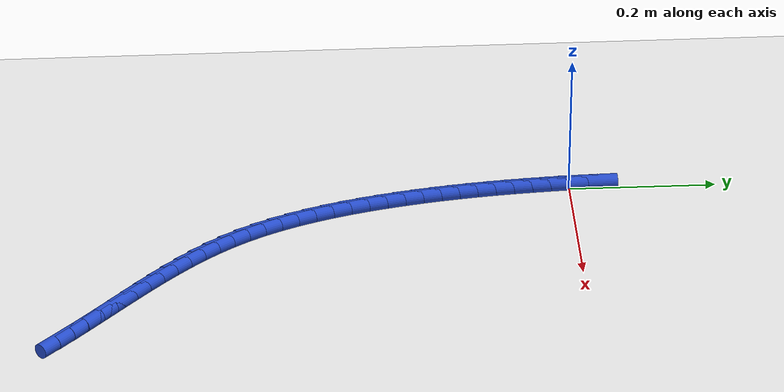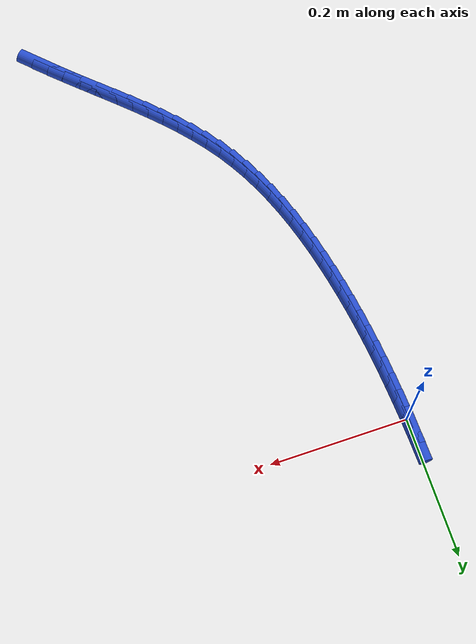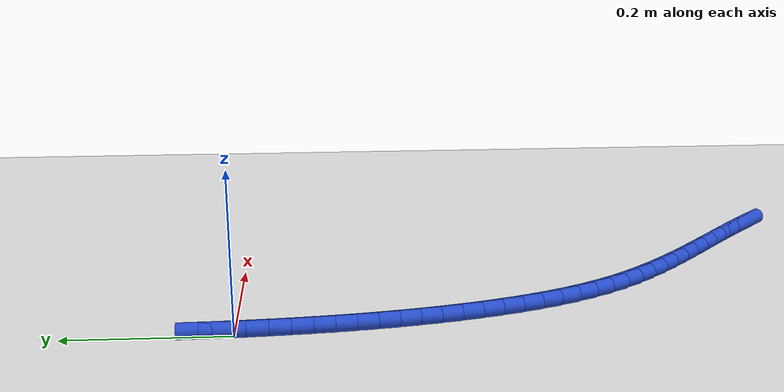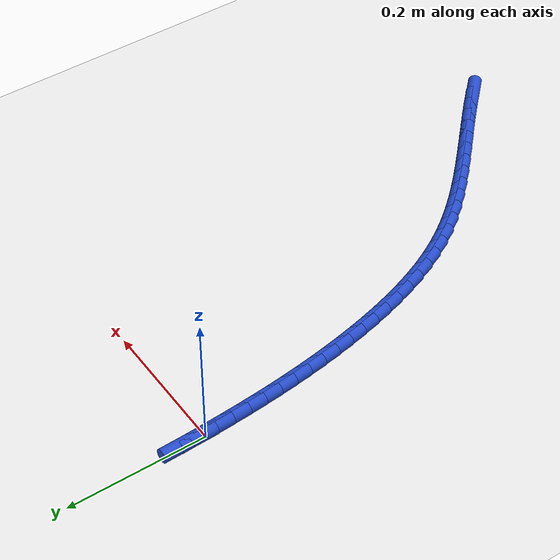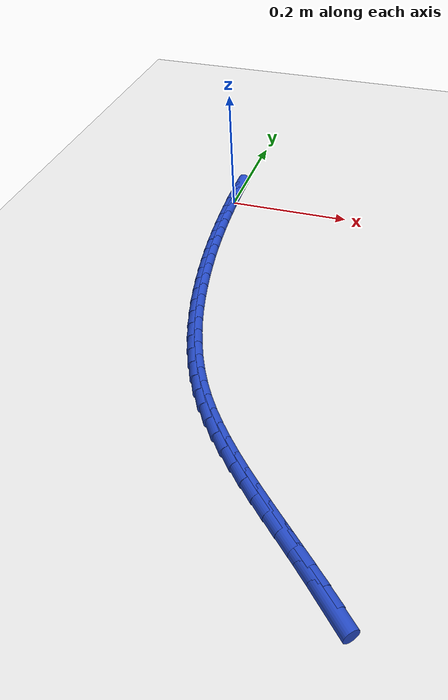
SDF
<sdf version="1.6">
 <world name="default">
  <model name="ground_plane">
   <static>1</static>
   <link name="link">
    <collision name="collision">
     <geometry><plane><normal>0 0 1</normal><size>100 100</size></plane></geometry>
     <surface><friction><ode><mu>100</mu><mu2>50</mu2></ode></friction></surface>
    </collision>
    <visual name="visual">
     <cast_shadows>0</cast_shadows>
     <geometry><plane><normal>0 0 1</normal><size>100 100</size></plane></geometry>
     <material>
      <script><uri>file://media/materials/scripts/gazebo.material</uri><name>Gazebo/WhiteGlow</name></script>
     </material>
    </visual>
   </link>
  </model>
  <model name="line">
   <link name="link_0">
    <pose>-9.75781955236954e-18 -6.938893903907228e-18 0.01 0 1.57 -1.5243373193202743</pose>
    <collision name="collision">
     <geometry><cylinder><radius>0.01</radius><length>0.08</length></cylinder></geometry>
    </collision>
    <visual name="visual">
     <material>
      <script><name>Gazebo/Blue</name><uri>file://media/materials/scripts/gazebo.material</uri></script>
     </material>
     <geometry><cylinder><radius>0.01</radius><length>0.08</length></cylinder></geometry>
    </visual>
   </link>
   <link name="link_1">
    <pose>-0.0012050888104080423 0.02592008986052021 0.01 0 1.57 -1.5419578158329121</pose>
    <collision name="collision">
     <geometry><cylinder><radius>0.01</radius><length>0.08</length></cylinder></geometry>
    </collision>
    <visual name="visual">
     <material>
      <script><name>Gazebo/Blue</name><uri>file://media/materials/scripts/gazebo.material</uri></script>
     </material>
     <geometry><cylinder><radius>0.01</radius><length>0.08</length></cylinder></geometry>
    </visual>
   </link>
   <link name="link_239">
    <pose>0.323386543951033 -0.6786966450368068 0.01 0 1.57 -0.7788642665599463</pose>
    <collision name="collision">
     <geometry><cylinder><radius>0.01</radius><length>0.08</length></cylinder></geometry>
    </collision>
    <visual name="visual">
     <material>
      <script><name>Gazebo/Blue</name><uri>file://media/materials/scripts/gazebo.material</uri></script>
     </material>
     <geometry><cylinder><radius>0.01</radius><length>0.08</length></cylinder></geometry>
    </visual>
   </link>
   <link name="link_240">
    <pose>0.3051212333121771 -0.6606684756271342 0.01 0 1.57 -0.762567975063587</pose>
    <collision name="collision">
     <geometry><cylinder><radius>0.01</radius><length>0.08</length></cylinder></geometry>
    </collision>
    <visual name="visual">
     <material>
      <script><name>Gazebo/Blue</name><uri>file://media/materials/scripts/gazebo.material</uri></script>
     </material>
     <geometry><cylinder><radius>0.01</radius><length>0.08</length></cylinder></geometry>
    </visual>
   </link>
   <link name="link_241">
    <pose>0.28659036636091817 -0.6429649895335015 0.01 0 1.57 -0.7525396142778975</pose>
    <collision name="collision">
     <geometry><cylinder><radius>0.01</radius><length>0.08</length></cylinder></geometry>
    </collision>
    <visual name="visual">
     <material>
      <script><name>Gazebo/Blue</name><uri>file://media/materials/scripts/gazebo.material</uri></script>
     </material>
     <geometry><cylinder><radius>0.01</radius><length>0.08</length></cylinder></geometry>
    </visual>
   </link>
   <link name="link_242">
    <pose>0.26791876717408736 -0.6254818116038203 0.01 0 1.57 -0.748796253603602</pose>
    <collision name="collision">
     <geometry><cylinder><radius>0.01</radius><length>0.08</length></cylinder></geometry>
    </collision>
    <visual name="visual">
     <material>
      <script><name>Gazebo/Blue</name><uri>file://media/materials/scripts/gazebo.material</uri></script>
     </material>
     <geometry><cylinder><radius>0.01</radius><length>0.08</length></cylinder></geometry>
    </visual>
   </link>
   <link name="link_243">
    <pose>0.24923125982851765 -0.6081145666860028 0.01 0 1.57 -0.7513795982838737</pose>
    <collision name="collision">
     <geometry><cylinder><radius>0.01</radius><length>0.08</length></cylinder></geometry>
    </collision>
    <visual name="visual">
     <material>
      <script><name>Gazebo/Blue</name><uri>file://media/materials/scripts/gazebo.material</uri></script>
     </material>
     <geometry><cylinder><radius>0.01</radius><length>0.08</length></cylinder></geometry>
    </visual>
   </link>
   <link name="link_244">
    <pose>0.2306526684010399 -0.5907588796279603 0.01 0 1.57 -0.7603611205721587</pose>
    <collision name="collision">
     <geometry><cylinder><radius>0.01</radius><length>0.08</length></cylinder></geometry>
    </collision>
    <visual name="visual">
     <material>
      <script><name>Gazebo/Blue</name><uri>file://media/materials/scripts/gazebo.material</uri></script>
     </material>
     <geometry><cylinder><radius>0.01</radius><length>0.08</length></cylinder></geometry>
    </visual>
   </link>
   <link name="link_245">
    <pose>0.2123078169684872 -0.5733103752776051 0.01 0 1.57 -0.7758398914722034</pose>
    <collision name="collision">
     <geometry><cylinder><radius>0.01</radius><length>0.08</length></cylinder></geometry>
    </collision>
    <visual name="visual">
     <material>
      <script><name>Gazebo/Blue</name><uri>file://media/materials/scripts/gazebo.material</uri></script>
     </material>
     <geometry><cylinder><radius>0.01</radius><length>0.08</length></cylinder></geometry>
    </visual>
   </link>
   <link name="link_246">
    <pose>0.1943215296076909 -0.5556646784828486 0.01 0 1.57 -0.7979324329898025</pose>
    <collision name="collision">
     <geometry><cylinder><radius>0.01</radius><length>0.08</length></cylinder></geometry>
    </collision>
    <visual name="visual">
     <material>
      <script><name>Gazebo/Blue</name><uri>file://media/materials/scripts/gazebo.material</uri></script>
     </material>
     <geometry><cylinder><radius>0.01</radius><length>0.08</length></cylinder></geometry>
    </visual>
   </link>
   <link name="link_247">
    <pose>0.1768186303954826 -0.5377174140916023 0.01 0 1.57 -0.826753501340625</pose>
    <collision name="collision">
     <geometry><cylinder><radius>0.01</radius><length>0.08</length></cylinder></geometry>
    </collision>
    <visual name="visual">
     <material>
      <script><name>Gazebo/Blue</name><uri>file://media/materials/scripts/gazebo.material</uri></script>
     </material>
     <geometry><cylinder><radius>0.01</radius><length>0.08</length></cylinder></geometry>
    </visual>
   </link>
   <link name="link_248">
    <pose>0.1599239434086952 -0.5193642069517788 0.01 0 1.57 -0.8623866148991036</pose>
    <collision name="collision">
     <geometry><cylinder><radius>0.01</radius><length>0.08</length></cylinder></geometry>
    </collision>
    <visual name="visual">
     <material>
      <script><name>Gazebo/Blue</name><uri>file://media/materials/scripts/gazebo.material</uri></script>
     </material>
     <geometry><cylinder><radius>0.01</radius><length>0.08</length></cylinder></geometry>
    </visual>
   </link>
   <link name="link_249">
    <pose>0.14376229272415975 -0.5005006819112888 0.01 0 1.57 -0.9048437201147613</pose>
    <collision name="collision">
     <geometry><cylinder><radius>0.01</radius><length>0.08</length></cylinder></geometry>
    </collision>
    <visual name="visual">
     <material>
      <script><name>Gazebo/Blue</name><uri>file://media/materials/scripts/gazebo.material</uri></script>
     </material>
     <geometry><cylinder><radius>0.01</radius><length>0.08</length></cylinder></geometry>
    </visual>
   </link>
   <link name="link_250">
    <pose>0.12845850241870913 -0.4810224638180452 0.01 0 1.57 -0.9540150769033636</pose>
    <collision name="collision">
     <geometry><cylinder><radius>0.01</radius><length>0.08</length></cylinder></geometry>
    </collision>
    <visual name="visual">
     <material>
      <script><name>Gazebo/Blue</name><uri>file://media/materials/scripts/gazebo.material</uri></script>
     </material>
     <geometry><cylinder><radius>0.01</radius><length>0.08</length></cylinder></geometry>
    </visual>
   </link>
   <link name="link_251">
    <pose>0.11413739656917438 -0.4608251775199585 0.01 0 1.57 -1.009475626277944</pose>
    <collision name="collision">
     <geometry><cylinder><radius>0.01</radius><length>0.08</length></cylinder></geometry>
    </collision>
    <visual name="visual">
     <material>
      <script><name>Gazebo/Blue</name><uri>file://media/materials/scripts/gazebo.material</uri></script>
     </material>
     <geometry><cylinder><radius>0.01</radius><length>0.08</length></cylinder></geometry>
    </visual>
   </link>
   <link name="link_252">
    <pose>0.10092140236906692 -0.4398070703097017 0.01 0 1.57 -1.066126749026534</pose>
    <collision name="collision">
     <geometry><cylinder><radius>0.01</radius><length>0.08</length></cylinder></geometry>
    </collision>
    <visual name="visual">
     <material>
      <script><name>Gazebo/Blue</name><uri>file://media/materials/scripts/gazebo.material</uri></script>
     </material>
     <geometry><cylinder><radius>0.01</radius><length>0.08</length></cylinder></geometry>
    </visual>
   </link>
   <link name="link_253">
    <pose>0.08885119181574944 -0.417955838342062 0.01 0 1.57 -1.1181822397743508</pose>
    <collision name="collision">
     <geometry><cylinder><radius>0.01</radius><length>0.08</length></cylinder></geometry>
    </collision>
    <visual name="visual">
     <material>
      <script><name>Gazebo/Blue</name><uri>file://media/materials/scripts/gazebo.material</uri></script>
     </material>
     <geometry><cylinder><radius>0.01</radius><length>0.08</length></cylinder></geometry>
    </visual>
   </link>
   <link name="link_254">
    <pose>0.07786740715851719 -0.395368620933417 0.01 0 1.57 -1.1654808330782205</pose>
    <collision name="collision">
     <geometry><cylinder><radius>0.01</radius><length>0.08</length></cylinder></geometry>
    </collision>
    <visual name="visual">
     <material>
      <script><name>Gazebo/Blue</name><uri>file://media/materials/scripts/gazebo.material</uri></script>
     </material>
     <geometry><cylinder><radius>0.01</radius><length>0.08</length></cylinder></geometry>
    </visual>
   </link>
   <link name="link_255">
    <pose>0.06790459216035843 -0.37214922979145637 0.01 0 1.57 -1.2082692762979066</pose>
    <collision name="collision">
     <geometry><cylinder><radius>0.01</radius><length>0.08</length></cylinder></geometry>
    </collision>
    <visual name="visual">
     <material>
      <script><name>Gazebo/Blue</name><uri>file://media/materials/scripts/gazebo.material</uri></script>
     </material>
     <geometry><cylinder><radius>0.01</radius><length>0.08</length></cylinder></geometry>
    </visual>
   </link>
   <link name="link_256">
    <pose>0.058897290584262754 -0.3484014766238722 0.01 0 1.57 -1.2468205442452938</pose>
    <collision name="collision">
     <geometry><cylinder><radius>0.01</radius><length>0.08</length></cylinder></geometry>
    </collision>
    <visual name="visual">
     <material>
      <script><name>Gazebo/Blue</name><uri>file://media/materials/scripts/gazebo.material</uri></script>
     </material>
     <geometry><cylinder><radius>0.01</radius><length>0.08</length></cylinder></geometry>
    </visual>
   </link>
   <link name="link_257">
    <pose>0.05078004619321879 -0.3242291731383546 0.01 0 1.57 -1.2814110231981624</pose>
    <collision name="collision">
     <geometry><cylinder><radius>0.01</radius><length>0.08</length></cylinder></geometry>
    </collision>
    <visual name="visual">
     <material>
      <script><name>Gazebo/Blue</name><uri>file://media/materials/scripts/gazebo.material</uri></script>
     </material>
     <geometry><cylinder><radius>0.01</radius><length>0.08</length></cylinder></geometry>
    </visual>
   </link>
   <link name="link_258">
    <pose>0.04348740275021528 -0.2997361310425936 0.01 0 1.57 -1.3123043900117295</pose>
    <collision name="collision">
     <geometry><cylinder><radius>0.01</radius><length>0.08</length></cylinder></geometry>
    </collision>
    <visual name="visual">
     <material>
      <script><name>Gazebo/Blue</name><uri>file://media/materials/scripts/gazebo.material</uri></script>
     </material>
     <geometry><cylinder><radius>0.01</radius><length>0.08</length></cylinder></geometry>
    </visual>
   </link>
   <link name="link_259">
    <pose>0.03695390401824163 -0.2750261620442815 0.01 0 1.57 -1.3397406036407933</pose>
    <collision name="collision">
     <geometry><cylinder><radius>0.01</radius><length>0.08</length></cylinder></geometry>
    </collision>
    <visual name="visual">
     <material>
      <script><name>Gazebo/Blue</name><uri>file://media/materials/scripts/gazebo.material</uri></script>
     </material>
     <geometry><cylinder><radius>0.01</radius><length>0.08</length></cylinder></geometry>
    </visual>
   </link>
   <link name="link_260">
    <pose>0.0311140937602864 -0.25020307785110757 0.01 0 1.57 -1.363931924525272</pose>
    <collision name="collision">
     <geometry><cylinder><radius>0.01</radius><length>0.08</length></cylinder></geometry>
    </collision>
    <visual name="visual">
     <material>
      <script><name>Gazebo/Blue</name><uri>file://media/materials/scripts/gazebo.material</uri></script>
     </material>
     <geometry><cylinder><radius>0.01</radius><length>0.08</length></cylinder></geometry>
    </visual>
   </link>
   <link name="link_261">
    <pose>0.02590255842661364 -0.2253704654700083 0.01 0 1.57 -1.385659908649324</pose>
    <collision name="collision">
     <geometry><cylinder><radius>0.01</radius><length>0.08</length></cylinder></geometry>
    </collision>
    <visual name="visual">
     <material>
      <script><name>Gazebo/Blue</name><uri>file://media/materials/scripts/gazebo.material</uri></script>
     </material>
     <geometry><cylinder><radius>0.01</radius><length>0.08</length></cylinder></geometry>
    </visual>
   </link>
   <link name="link_262">
    <pose>0.021261746144252986 -0.20059052897304178 0.01 0 1.57 -1.4062411083282915</pose>
    <collision name="collision">
     <geometry><cylinder><radius>0.01</radius><length>0.08</length></cylinder></geometry>
    </collision>
    <visual name="visual">
     <material>
      <script><name>Gazebo/Blue</name><uri>file://media/materials/scripts/gazebo.material</uri></script>
     </material>
     <geometry><cylinder><radius>0.01</radius><length>0.08</length></cylinder></geometry>
    </visual>
   </link>
   <link name="link_263">
    <pose>0.017151095119478935 -0.1758360386684805 0.01 0 1.57 -1.4257132426261092</pose>
    <collision name="collision">
     <geometry><cylinder><radius>0.01</radius><length>0.08</length></cylinder></geometry>
    </collision>
    <visual name="visual">
     <material>
      <script><name>Gazebo/Blue</name><uri>file://media/materials/scripts/gazebo.material</uri></script>
     </material>
     <geometry><cylinder><radius>0.01</radius><length>0.08</length></cylinder></geometry>
    </visual>
   </link>
   <link name="link_264">
    <pose>0.013532259481356931 -0.15106810050961017 0.01 0 1.57 -1.4439496163766568</pose>
    <collision name="collision">
     <geometry><cylinder><radius>0.01</radius><length>0.08</length></cylinder></geometry>
    </collision>
    <visual name="visual">
     <material>
      <script><name>Gazebo/Blue</name><uri>file://media/materials/scripts/gazebo.material</uri></script>
     </material>
     <geometry><cylinder><radius>0.01</radius><length>0.08</length></cylinder></geometry>
    </visual>
   </link>
   <link name="link_265">
    <pose>0.010366893358952897 -0.12624782044971944 0.01 0 1.57 -1.4608411587353478</pose>
    <collision name="collision">
     <geometry><cylinder><radius>0.01</radius><length>0.08</length></cylinder></geometry>
    </collision>
    <visual name="visual">
     <material>
      <script><name>Gazebo/Blue</name><uri>file://media/materials/scripts/gazebo.material</uri></script>
     </material>
     <geometry><cylinder><radius>0.01</radius><length>0.08</length></cylinder></geometry>
    </visual>
   </link>
   <link name="link_266">
    <pose>0.0076166508813323396 -0.10133630444209411 0.01 0 1.57 -1.4762979251345436</pose>
    <collision name="collision">
     <geometry><cylinder><radius>0.01</radius><length>0.08</length></cylinder></geometry>
    </collision>
    <visual name="visual">
     <material>
      <script><name>Gazebo/Blue</name><uri>file://media/materials/scripts/gazebo.material</uri></script>
     </material>
     <geometry><cylinder><radius>0.01</radius><length>0.08</length></cylinder></geometry>
    </visual>
   </link>
   <link name="link_267">
    <pose>0.005243186177561122 -0.07629465844002278 0.01 0 1.57 -1.4902498765085912</pose>
    <collision name="collision">
     <geometry><cylinder><radius>0.01</radius><length>0.08</length></cylinder></geometry>
    </collision>
    <visual name="visual">
     <material>
      <script><name>Gazebo/Blue</name><uri>file://media/materials/scripts/gazebo.material</uri></script>
     </material>
     <geometry><cylinder><radius>0.01</radius><length>0.08</length></cylinder></geometry>
    </visual>
   </link>
   <link name="link_268">
    <pose>0.003208153376704865 -0.051083988396791985 0.01 0 1.57 -1.5026469851430724</pose>
    <collision name="collision">
     <geometry><cylinder><radius>0.01</radius><length>0.08</length></cylinder></geometry>
    </collision>
    <visual name="visual">
     <material>
      <script><name>Gazebo/Blue</name><uri>file://media/materials/scripts/gazebo.material</uri></script>
     </material>
     <geometry><cylinder><radius>0.01</radius><length>0.08</length></cylinder></geometry>
    </visual>
   </link>
   <link name="link_269">
    <pose>0.001473206607829217 -0.0256654002656881 0.01 0 1.57 -1.513458751621972</pose>
    <collision name="collision">
     <geometry><cylinder><radius>0.01</radius><length>0.08</length></cylinder></geometry>
    </collision>
    <visual name="visual">
     <material>
      <script><name>Gazebo/Blue</name><uri>file://media/materials/scripts/gazebo.material</uri></script>
     </material>
     <geometry><cylinder><radius>0.01</radius><length>0.08</length></cylinder></geometry>
    </visual>
   </link>
   <link name="link_270">
    <pose>-1.6588293239028218e-17 1.1796119636642288e-16 0.01 0 1.57 -1.52267323862045</pose>
    <collision name="collision">
     <geometry><cylinder><radius>0.01</radius><length>0.08</length></cylinder></geometry>
    </collision>
    <visual name="visual">
     <material>
      <script><name>Gazebo/Blue</name><uri>file://media/materials/scripts/gazebo.material</uri></script>
     </material>
     <geometry><cylinder><radius>0.01</radius><length>0.08</length></cylinder></geometry>
    </visual>
   </link>
  </model>
 </world>
</sdf>
